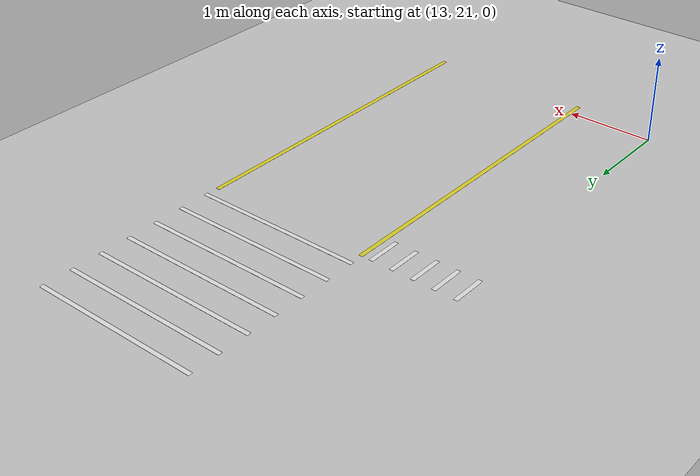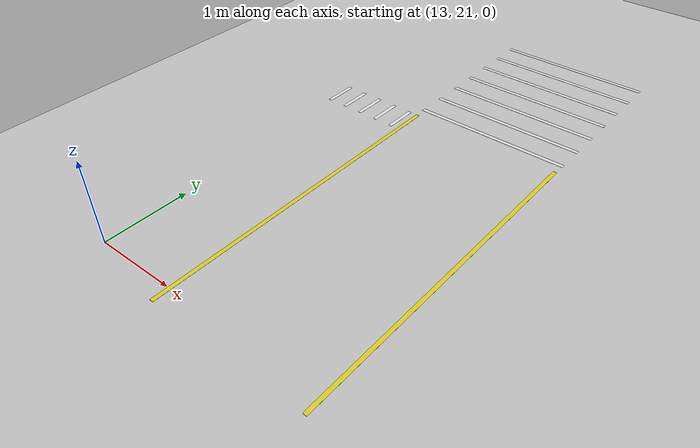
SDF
<sdf version="1.6">
 <world name="default">
  <model name="ground_plane">
   <static>1</static>
   <link name="link">
    <collision name="collision">
     <geometry><plane><normal>0 0 1</normal><size>100 100</size></plane></geometry>
     <surface><friction><ode><mu>100</mu><mu2>50</mu2></ode></friction></surface>
    </collision>
    <visual name="visual">
     <cast_shadows>0</cast_shadows>
     <geometry><plane><normal>0 0 1</normal><size>100 100</size></plane></geometry>
     <material>
      <script><uri>file://media/materials/scripts/gazebo.material</uri><name>Gazebo/Grey</name></script>
     </material>
    </visual>
   </link>
  </model>
  <model name="line4m_4">
   <link name="link_3">
    <inertial>
     <mass>1</mass>
     <inertia>
      <ixx>0.166667</ixx>
      <ixy>0</ixy>
      <ixz>0</ixz>
      <iyy>0.166667</iyy>
      <iyz>0</iyz>
      <izz>0.166667</izz>
     </inertia>
    </inertial>
    <visual name="visual">
     <geometry><box><size>0.05 4 0.001</size></box></geometry>
     <material>
      <lighting>1</lighting>
      <script><uri>file://media/materials/scripts/gazebo.material</uri><name>Gazebo/Yellow</name></script>
     </material>
    </visual>
    <collision name="collision">
     <geometry><box><size>0.05 4 1e-06</size></box></geometry>
     <surface>
      <friction>
       <ode><mu>1</mu><mu2>1</mu2><fdir1>0 0 0</fdir1><slip1>0</slip1><slip2>0</slip2></ode>
       <torsional>
        <coefficient>1</coefficient>
        <patch_radius>0</patch_radius>
        <surface_radius>0</surface_radius>
        <use_patch_radius>1</use_patch_radius>
        <ode><slip>0</slip></ode>
       </torsional>
      </friction>
      <bounce><restitution_coefficient>0</restitution_coefficient><threshold>1e+06</threshold></bounce>
      <contact>
       <collide_without_contact>0</collide_without_contact>
       <collide_without_contact_bitmask>1</collide_without_contact_bitmask>
       <collide_bitmask>1</collide_bitmask>
       <ode>
        <soft_cfm>0</soft_cfm>
        <soft_erp>0.2</soft_erp>
        <kp>1e+13</kp>
        <kd>1</kd>
        <max_vel>0.01</max_vel>
        <min_depth>0</min_depth>
       </ode>
       <bullet>
        <split_impulse>1</split_impulse>
        <split_impulse_penetration_threshold>-0.01</split_impulse_penetration_threshold>
        <soft_cfm>0</soft_cfm>
        <soft_erp>0.2</soft_erp>
        <kp>1e+13</kp>
        <kd>1</kd>
       </bullet>
      </contact>
     </surface>
    </collision>
   </link>
   <static>1</static>
   <pose>15.975 22.8 0 0 -0 0</pose>
  </model>
  <model name="line4m_5">
   <link name="link_3">
    <inertial>
     <mass>1</mass>
     <inertia>
      <ixx>0.166667</ixx>
      <ixy>0</ixy>
      <ixz>0</ixz>
      <iyy>0.166667</iyy>
      <iyz>0</iyz>
      <izz>0.166667</izz>
     </inertia>
    </inertial>
    <visual name="visual">
     <geometry><box><size>0.05 4 0.001</size></box></geometry>
     <material>
      <lighting>1</lighting>
      <script><uri>file://media/materials/scripts/gazebo.material</uri><name>Gazebo/Yellow</name></script>
     </material>
    </visual>
    <collision name="collision">
     <geometry><box><size>0.05 4 1e-06</size></box></geometry>
     <surface>
      <friction>
       <ode><mu>1</mu><mu2>1</mu2><fdir1>0 0 0</fdir1><slip1>0</slip1><slip2>0</slip2></ode>
       <torsional>
        <coefficient>1</coefficient>
        <patch_radius>0</patch_radius>
        <surface_radius>0</surface_radius>
        <use_patch_radius>1</use_patch_radius>
        <ode><slip>0</slip></ode>
       </torsional>
      </friction>
      <bounce><restitution_coefficient>0</restitution_coefficient><threshold>1e+06</threshold></bounce>
      <contact>
       <collide_without_contact>0</collide_without_contact>
       <collide_without_contact_bitmask>1</collide_without_contact_bitmask>
       <collide_bitmask>1</collide_bitmask>
       <ode>
        <soft_cfm>0</soft_cfm>
        <soft_erp>0.2</soft_erp>
        <kp>1e+13</kp>
        <kd>1</kd>
        <max_vel>0.01</max_vel>
        <min_depth>0</min_depth>
       </ode>
       <bullet>
        <split_impulse>1</split_impulse>
        <split_impulse_penetration_threshold>-0.01</split_impulse_penetration_threshold>
        <soft_cfm>0</soft_cfm>
        <soft_erp>0.2</soft_erp>
        <kp>1e+13</kp>
        <kd>1</kd>
       </bullet>
      </contact>
     </surface>
    </collision>
   </link>
   <static>1</static>
   <pose>14.025 22.8 0 0 -0 0</pose>
  </model>
  <model name="zebra_crossing_200cmx210cm_2">
   <link name="link_0">
    <inertial>
     <mass>1</mass>
     <inertia>
      <ixx>0.166667</ixx>
      <ixy>0</ixy>
      <ixz>0</ixz>
      <iyy>0.166667</iyy>
      <iyz>0</iyz>
      <izz>0.166667</izz>
     </inertia>
    </inertial>
    <visual name="ModelPreview_1::link_0::visual_6">
     <pose>-1.05 0 0 0 -0 0</pose>
     <geometry><box><size>0.05 2 0.001</size></box></geometry>
     <material>
      <lighting>1</lighting>
      <script><uri>file://media/materials/scripts/gazebo.material</uri><name>Gazebo/White</name></script>
     </material>
    </visual>
    <visual name="ModelPreview_1::link_0::visual_1">
     <pose>0.35 0 0 0 -0 0</pose>
     <geometry><box><size>0.05 2 0.001</size></box></geometry>
     <material>
      <lighting>1</lighting>
      <script><uri>file://media/materials/scripts/gazebo.material</uri><name>Gazebo/White</name></script>
     </material>
    </visual>
    <visual name="ModelPreview_1::link_0::visual_5">
     <pose>-0.7 0 0 0 -0 0</pose>
     <geometry><box><size>0.05 2 0.001</size></box></geometry>
     <material>
      <lighting>1</lighting>
      <script><uri>file://media/materials/scripts/gazebo.material</uri><name>Gazebo/White</name></script>
     </material>
    </visual>
    <visual name="ModelPreview_1::link_0::visual_3">
     <pose>1.05 0 0 0 -0 0</pose>
     <geometry><box><size>0.05 2 0.001</size></box></geometry>
     <material>
      <lighting>1</lighting>
      <script><uri>file://media/materials/scripts/gazebo.material</uri><name>Gazebo/White</name></script>
     </material>
    </visual>
    <visual name="ModelPreview_1::link_0::visual_2">
     <pose>0.7 0 0 0 -0 0</pose>
     <geometry><box><size>0.05 2 0.001</size></box></geometry>
     <material>
      <lighting>1</lighting>
      <script><uri>file://media/materials/scripts/gazebo.material</uri><name>Gazebo/White</name></script>
     </material>
    </visual>
    <visual name="visual">
     <geometry><box><size>0.05 2 0.001</size></box></geometry>
     <material>
      <lighting>1</lighting>
      <script><uri>file://media/materials/scripts/gazebo.material</uri><name>Gazebo/White</name></script>
     </material>
    </visual>
    <visual name="ModelPreview_1::link_0::visual_4">
     <pose>-0.35 0 0 0 -0 0</pose>
     <geometry><box><size>0.05 2 0.001</size></box></geometry>
     <material>
      <lighting>1</lighting>
      <script><uri>file://media/materials/scripts/gazebo.material</uri><name>Gazebo/White</name></script>
     </material>
    </visual>
    <collision name="collision_2">
     <pose>0.7 0 0 0 -0 0</pose>
     <geometry><box><size>0.05 2 1e-05</size></box></geometry>
     <surface>
      <friction>
       <ode><mu>1</mu><mu2>1</mu2><fdir1>0 0 0</fdir1><slip1>0</slip1><slip2>0</slip2></ode>
       <torsional>
        <coefficient>1</coefficient>
        <patch_radius>0</patch_radius>
        <surface_radius>0</surface_radius>
        <use_patch_radius>1</use_patch_radius>
        <ode><slip>0</slip></ode>
       </torsional>
      </friction>
      <bounce><restitution_coefficient>0</restitution_coefficient><threshold>1e+06</threshold></bounce>
      <contact>
       <collide_without_contact>0</collide_without_contact>
       <collide_without_contact_bitmask>1</collide_without_contact_bitmask>
       <collide_bitmask>1</collide_bitmask>
       <ode>
        <soft_cfm>0</soft_cfm>
        <soft_erp>0.2</soft_erp>
        <kp>1e+13</kp>
        <kd>1</kd>
        <max_vel>0.01</max_vel>
        <min_depth>0</min_depth>
       </ode>
       <bullet>
        <split_impulse>1</split_impulse>
        <split_impulse_penetration_threshold>-0.01</split_impulse_penetration_threshold>
        <soft_cfm>0</soft_cfm>
        <soft_erp>0.2</soft_erp>
        <kp>1e+13</kp>
        <kd>1</kd>
       </bullet>
      </contact>
     </surface>
    </collision>
    <collision name="collision_4">
     <pose>-0.35 0 0 0 -0 0</pose>
     <geometry><box><size>0.05 2 1e-05</size></box></geometry>
     <surface>
      <friction>
       <ode><mu>1</mu><mu2>1</mu2><fdir1>0 0 0</fdir1><slip1>0</slip1><slip2>0</slip2></ode>
       <torsional>
        <coefficient>1</coefficient>
        <patch_radius>0</patch_radius>
        <surface_radius>0</surface_radius>
        <use_patch_radius>1</use_patch_radius>
        <ode><slip>0</slip></ode>
       </torsional>
      </friction>
      <bounce><restitution_coefficient>0</restitution_coefficient><threshold>1e+06</threshold></bounce>
      <contact>
       <collide_without_contact>0</collide_without_contact>
       <collide_without_contact_bitmask>1</collide_without_contact_bitmask>
       <collide_bitmask>1</collide_bitmask>
       <ode>
        <soft_cfm>0</soft_cfm>
        <soft_erp>0.2</soft_erp>
        <kp>1e+13</kp>
        <kd>1</kd>
        <max_vel>0.01</max_vel>
        <min_depth>0</min_depth>
       </ode>
       <bullet>
        <split_impulse>1</split_impulse>
        <split_impulse_penetration_threshold>-0.01</split_impulse_penetration_threshold>
        <soft_cfm>0</soft_cfm>
        <soft_erp>0.2</soft_erp>
        <kp>1e+13</kp>
        <kd>1</kd>
       </bullet>
      </contact>
     </surface>
    </collision>
    <collision name="collision">
     <geometry><box><size>0.05 2 1e-05</size></box></geometry>
     <surface>
      <friction>
       <ode><mu>1</mu><mu2>1</mu2><fdir1>0 0 0</fdir1><slip1>0</slip1><slip2>0</slip2></ode>
       <torsional>
        <coefficient>1</coefficient>
        <patch_radius>0</patch_radius>
        <surface_radius>0</surface_radius>
        <use_patch_radius>1</use_patch_radius>
        <ode><slip>0</slip></ode>
       </torsional>
      </friction>
      <bounce><restitution_coefficient>0</restitution_coefficient><threshold>1e+06</threshold></bounce>
      <contact>
       <collide_without_contact>0</collide_without_contact>
       <collide_without_contact_bitmask>1</collide_without_contact_bitmask>
       <collide_bitmask>1</collide_bitmask>
       <ode>
        <soft_cfm>0</soft_cfm>
        <soft_erp>0.2</soft_erp>
        <kp>1e+13</kp>
        <kd>1</kd>
        <max_vel>0.01</max_vel>
        <min_depth>0</min_depth>
       </ode>
       <bullet>
        <split_impulse>1</split_impulse>
        <split_impulse_penetration_threshold>-0.01</split_impulse_penetration_threshold>
        <soft_cfm>0</soft_cfm>
        <soft_erp>0.2</soft_erp>
        <kp>1e+13</kp>
        <kd>1</kd>
       </bullet>
      </contact>
     </surface>
    </collision>
    <collision name="collision_5">
     <pose>-0.7 0 0 0 -0 0</pose>
     <geometry><box><size>0.05 2 1e-05</size></box></geometry>
     <surface>
      <friction>
       <ode><mu>1</mu><mu2>1</mu2><fdir1>0 0 0</fdir1><slip1>0</slip1><slip2>0</slip2></ode>
       <torsional>
        <coefficient>1</coefficient>
        <patch_radius>0</patch_radius>
        <surface_radius>0</surface_radius>
        <use_patch_radius>1</use_patch_radius>
        <ode><slip>0</slip></ode>
       </torsional>
      </friction>
      <bounce><restitution_coefficient>0</restitution_coefficient><threshold>1e+06</threshold></bounce>
      <contact>
       <collide_without_contact>0</collide_without_contact>
       <collide_without_contact_bitmask>1</collide_without_contact_bitmask>
       <collide_bitmask>1</collide_bitmask>
       <ode>
        <soft_cfm>0</soft_cfm>
        <soft_erp>0.2</soft_erp>
        <kp>1e+13</kp>
        <kd>1</kd>
        <max_vel>0.01</max_vel>
        <min_depth>0</min_depth>
       </ode>
       <bullet>
        <split_impulse>1</split_impulse>
        <split_impulse_penetration_threshold>-0.01</split_impulse_penetration_threshold>
        <soft_cfm>0</soft_cfm>
        <soft_erp>0.2</soft_erp>
        <kp>1e+13</kp>
        <kd>1</kd>
       </bullet>
      </contact>
     </surface>
    </collision>
    <collision name="collision_1">
     <pose>0.35 0 0 0 -0 0</pose>
     <geometry><box><size>0.05 2 1e-05</size></box></geometry>
     <surface>
      <friction>
       <ode><mu>1</mu><mu2>1</mu2><fdir1>0 0 0</fdir1><slip1>0</slip1><slip2>0</slip2></ode>
       <torsional>
        <coefficient>1</coefficient>
        <patch_radius>0</patch_radius>
        <surface_radius>0</surface_radius>
        <use_patch_radius>1</use_patch_radius>
        <ode><slip>0</slip></ode>
       </torsional>
      </friction>
      <bounce><restitution_coefficient>0</restitution_coefficient><threshold>1e+06</threshold></bounce>
      <contact>
       <collide_without_contact>0</collide_without_contact>
       <collide_without_contact_bitmask>1</collide_without_contact_bitmask>
       <collide_bitmask>1</collide_bitmask>
       <ode>
        <soft_cfm>0</soft_cfm>
        <soft_erp>0.2</soft_erp>
        <kp>1e+13</kp>
        <kd>1</kd>
        <max_vel>0.01</max_vel>
        <min_depth>0</min_depth>
       </ode>
       <bullet>
        <split_impulse>1</split_impulse>
        <split_impulse_penetration_threshold>-0.01</split_impulse_penetration_threshold>
        <soft_cfm>0</soft_cfm>
        <soft_erp>0.2</soft_erp>
        <kp>1e+13</kp>
        <kd>1</kd>
       </bullet>
      </contact>
     </surface>
    </collision>
    <collision name="collision_3">
     <pose>1.05 0 0 0 -0 0</pose>
     <geometry><box><size>0.05 2 1e-05</size></box></geometry>
     <surface>
      <friction>
       <ode><mu>1</mu><mu2>1</mu2><fdir1>0 0 0</fdir1><slip1>0</slip1><slip2>0</slip2></ode>
       <torsional>
        <coefficient>1</coefficient>
        <patch_radius>0</patch_radius>
        <surface_radius>0</surface_radius>
        <use_patch_radius>1</use_patch_radius>
        <ode><slip>0</slip></ode>
       </torsional>
      </friction>
      <bounce><restitution_coefficient>0</restitution_coefficient><threshold>1e+06</threshold></bounce>
      <contact>
       <collide_without_contact>0</collide_without_contact>
       <collide_without_contact_bitmask>1</collide_without_contact_bitmask>
       <collide_bitmask>1</collide_bitmask>
       <ode>
        <soft_cfm>0</soft_cfm>
        <soft_erp>0.2</soft_erp>
        <kp>1e+13</kp>
        <kd>1</kd>
        <max_vel>0.01</max_vel>
        <min_depth>0</min_depth>
       </ode>
       <bullet>
        <split_impulse>1</split_impulse>
        <split_impulse_penetration_threshold>-0.01</split_impulse_penetration_threshold>
        <soft_cfm>0</soft_cfm>
        <soft_erp>0.2</soft_erp>
        <kp>1e+13</kp>
        <kd>1</kd>
       </bullet>
      </contact>
     </surface>
    </collision>
    <collision name="collision_6">
     <pose>-1.05 0 0 0 -0 0</pose>
     <geometry><box><size>0.05 2 1e-05</size></box></geometry>
     <surface>
      <friction>
       <ode><mu>1</mu><mu2>1</mu2><fdir1>0 0 0</fdir1><slip1>0</slip1><slip2>0</slip2></ode>
       <torsional>
        <coefficient>1</coefficient>
        <patch_radius>0</patch_radius>
        <surface_radius>0</surface_radius>
        <use_patch_radius>1</use_patch_radius>
        <ode><slip>0</slip></ode>
       </torsional>
      </friction>
      <bounce><restitution_coefficient>0</restitution_coefficient><threshold>1e+06</threshold></bounce>
      <contact>
       <collide_without_contact>0</collide_without_contact>
       <collide_without_contact_bitmask>1</collide_without_contact_bitmask>
       <collide_bitmask>1</collide_bitmask>
       <ode>
        <soft_cfm>0</soft_cfm>
        <soft_erp>0.2</soft_erp>
        <kp>1e+13</kp>
        <kd>1</kd>
        <max_vel>0.01</max_vel>
        <min_depth>0</min_depth>
       </ode>
       <bullet>
        <split_impulse>1</split_impulse>
        <split_impulse_penetration_threshold>-0.01</split_impulse_penetration_threshold>
        <soft_cfm>0</soft_cfm>
        <soft_erp>0.2</soft_erp>
        <kp>1e+13</kp>
        <kd>1</kd>
       </bullet>
      </contact>
     </surface>
    </collision>
   </link>
   <static>1</static>
   <pose>15 26 0 0 -0 1.5708</pose>
  </model>
  <model name="zebro_crossing_40cmx120cm_1">
   <link name="link_1">
    <inertial>
     <mass>1</mass>
     <inertia>
      <ixx>0.166667</ixx>
      <ixy>0</ixy>
      <ixz>0</ixz>
      <iyy>0.166667</iyy>
      <iyz>0</iyz>
      <izz>0.166667</izz>
     </inertia>
    </inertial>
    <visual name="ModelPreview_3::link_1::visual_4">
     <pose>-0.5 0 0 0 -0 0</pose>
     <geometry><box><size>0.05 0.4 0.001</size></box></geometry>
     <material>
      <lighting>1</lighting>
      <script><uri>file://media/materials/scripts/gazebo.material</uri><name>Gazebo/White</name></script>
     </material>
    </visual>
    <visual name="ModelPreview_3::link_1::visual_1">
     <pose>0.25 0 0 0 -0 0</pose>
     <geometry><box><size>0.05 0.4 0.001</size></box></geometry>
     <material>
      <lighting>1</lighting>
      <script><uri>file://media/materials/scripts/gazebo.material</uri><name>Gazebo/White</name></script>
     </material>
    </visual>
    <visual name="ModelPreview_3::link_1::visual_2">
     <pose>0.5 0 0 0 -0 0</pose>
     <geometry><box><size>0.05 0.4 0.001</size></box></geometry>
     <material>
      <lighting>1</lighting>
      <script><uri>file://media/materials/scripts/gazebo.material</uri><name>Gazebo/White</name></script>
     </material>
    </visual>
    <visual name="visual">
     <geometry><box><size>0.05 0.4 0.001</size></box></geometry>
     <material>
      <lighting>1</lighting>
      <script><uri>file://media/materials/scripts/gazebo.material</uri><name>Gazebo/White</name></script>
     </material>
    </visual>
    <visual name="ModelPreview_3::link_1::visual_3">
     <pose>-0.25 0 0 0 -0 0</pose>
     <geometry><box><size>0.05 0.4 0.001</size></box></geometry>
     <material>
      <lighting>1</lighting>
      <script><uri>file://media/materials/scripts/gazebo.material</uri><name>Gazebo/White</name></script>
     </material>
    </visual>
    <collision name="collision_1">
     <pose>0.25 0 0 0 -0 0</pose>
     <geometry><box><size>0.05 0.4 1e-06</size></box></geometry>
     <surface>
      <friction>
       <ode><mu>1</mu><mu2>1</mu2><fdir1>0 0 0</fdir1><slip1>0</slip1><slip2>0</slip2></ode>
       <torsional>
        <coefficient>1</coefficient>
        <patch_radius>0</patch_radius>
        <surface_radius>0</surface_radius>
        <use_patch_radius>1</use_patch_radius>
        <ode><slip>0</slip></ode>
       </torsional>
      </friction>
      <bounce><restitution_coefficient>0</restitution_coefficient><threshold>1e+06</threshold></bounce>
      <contact>
       <collide_without_contact>0</collide_without_contact>
       <collide_without_contact_bitmask>1</collide_without_contact_bitmask>
       <collide_bitmask>1</collide_bitmask>
       <ode>
        <soft_cfm>0</soft_cfm>
        <soft_erp>0.2</soft_erp>
        <kp>1e+13</kp>
        <kd>1</kd>
        <max_vel>0.01</max_vel>
        <min_depth>0</min_depth>
       </ode>
       <bullet>
        <split_impulse>1</split_impulse>
        <split_impulse_penetration_threshold>-0.01</split_impulse_penetration_threshold>
        <soft_cfm>0</soft_cfm>
        <soft_erp>0.2</soft_erp>
        <kp>1e+13</kp>
        <kd>1</kd>
       </bullet>
      </contact>
     </surface>
    </collision>
    <collision name="collision_2">
     <pose>0.5 0 0 0 -0 0</pose>
     <geometry><box><size>0.05 0.4 1e-06</size></box></geometry>
     <surface>
      <friction>
       <ode><mu>1</mu><mu2>1</mu2><fdir1>0 0 0</fdir1><slip1>0</slip1><slip2>0</slip2></ode>
       <torsional>
        <coefficient>1</coefficient>
        <patch_radius>0</patch_radius>
        <surface_radius>0</surface_radius>
        <use_patch_radius>1</use_patch_radius>
        <ode><slip>0</slip></ode>
       </torsional>
      </friction>
      <bounce><restitution_coefficient>0</restitution_coefficient><threshold>1e+06</threshold></bounce>
      <contact>
       <collide_without_contact>0</collide_without_contact>
       <collide_without_contact_bitmask>1</collide_without_contact_bitmask>
       <collide_bitmask>1</collide_bitmask>
       <ode>
        <soft_cfm>0</soft_cfm>
        <soft_erp>0.2</soft_erp>
        <kp>1e+13</kp>
        <kd>1</kd>
        <max_vel>0.01</max_vel>
        <min_depth>0</min_depth>
       </ode>
       <bullet>
        <split_impulse>1</split_impulse>
        <split_impulse_penetration_threshold>-0.01</split_impulse_penetration_threshold>
        <soft_cfm>0</soft_cfm>
        <soft_erp>0.2</soft_erp>
        <kp>1e+13</kp>
        <kd>1</kd>
       </bullet>
      </contact>
     </surface>
    </collision>
    <collision name="collision_3">
     <pose>-0.25 0 0 0 -0 0</pose>
     <geometry><box><size>0.05 0.4 1e-06</size></box></geometry>
     <surface>
      <friction>
       <ode><mu>1</mu><mu2>1</mu2><fdir1>0 0 0</fdir1><slip1>0</slip1><slip2>0</slip2></ode>
       <torsional>
        <coefficient>1</coefficient>
        <patch_radius>0</patch_radius>
        <surface_radius>0</surface_radius>
        <use_patch_radius>1</use_patch_radius>
        <ode><slip>0</slip></ode>
       </torsional>
      </friction>
      <bounce><restitution_coefficient>0</restitution_coefficient><threshold>1e+06</threshold></bounce>
      <contact>
       <collide_without_contact>0</collide_without_contact>
       <collide_without_contact_bitmask>1</collide_without_contact_bitmask>
       <collide_bitmask>1</collide_bitmask>
       <ode>
        <soft_cfm>0</soft_cfm>
        <soft_erp>0.2</soft_erp>
        <kp>1e+13</kp>
        <kd>1</kd>
        <max_vel>0.01</max_vel>
        <min_depth>0</min_depth>
       </ode>
       <bullet>
        <split_impulse>1</split_impulse>
        <split_impulse_penetration_threshold>-0.01</split_impulse_penetration_threshold>
        <soft_cfm>0</soft_cfm>
        <soft_erp>0.2</soft_erp>
        <kp>1e+13</kp>
        <kd>1</kd>
       </bullet>
      </contact>
     </surface>
    </collision>
    <collision name="collision">
     <geometry><box><size>0.05 0.4 1e-06</size></box></geometry>
     <surface>
      <friction>
       <ode><mu>1</mu><mu2>1</mu2><fdir1>0 0 0</fdir1><slip1>0</slip1><slip2>0</slip2></ode>
       <torsional>
        <coefficient>1</coefficient>
        <patch_radius>0</patch_radius>
        <surface_radius>0</surface_radius>
        <use_patch_radius>1</use_patch_radius>
        <ode><slip>0</slip></ode>
       </torsional>
      </friction>
      <bounce><restitution_coefficient>0</restitution_coefficient><threshold>1e+06</threshold></bounce>
      <contact>
       <collide_without_contact>0</collide_without_contact>
       <collide_without_contact_bitmask>1</collide_without_contact_bitmask>
       <collide_bitmask>1</collide_bitmask>
       <ode>
        <soft_cfm>0</soft_cfm>
        <soft_erp>0.2</soft_erp>
        <kp>1e+13</kp>
        <kd>1</kd>
        <max_vel>0.01</max_vel>
        <min_depth>0</min_depth>
       </ode>
       <bullet>
        <split_impulse>1</split_impulse>
        <split_impulse_penetration_threshold>-0.01</split_impulse_penetration_threshold>
        <soft_cfm>0</soft_cfm>
        <soft_erp>0.2</soft_erp>
        <kp>1e+13</kp>
        <kd>1</kd>
       </bullet>
      </contact>
     </surface>
    </collision>
    <collision name="collision_4">
     <pose>-0.5 0 0 0 -0 0</pose>
     <geometry><box><size>0.05 0.4 1e-06</size></box></geometry>
     <surface>
      <friction>
       <ode><mu>1</mu><mu2>1</mu2><fdir1>0 0 0</fdir1><slip1>0</slip1><slip2>0</slip2></ode>
       <torsional>
        <coefficient>1</coefficient>
        <patch_radius>0</patch_radius>
        <surface_radius>0</surface_radius>
        <use_patch_radius>1</use_patch_radius>
        <ode><slip>0</slip></ode>
       </torsional>
      </friction>
      <bounce><restitution_coefficient>0</restitution_coefficient><threshold>1e+06</threshold></bounce>
      <contact>
       <collide_without_contact>0</collide_without_contact>
       <collide_without_contact_bitmask>1</collide_without_contact_bitmask>
       <collide_bitmask>1</collide_bitmask>
       <ode>
        <soft_cfm>0</soft_cfm>
        <soft_erp>0.2</soft_erp>
        <kp>1e+13</kp>
        <kd>1</kd>
        <max_vel>0.01</max_vel>
        <min_depth>0</min_depth>
       </ode>
       <bullet>
        <split_impulse>1</split_impulse>
        <split_impulse_penetration_threshold>-0.01</split_impulse_penetration_threshold>
        <soft_cfm>0</soft_cfm>
        <soft_erp>0.2</soft_erp>
        <kp>1e+13</kp>
        <kd>1</kd>
       </bullet>
      </contact>
     </surface>
    </collision>
   </link>
   <static>1</static>
   <pose>13.4 24.6 0 0 -0 0</pose>
  </model>
 </world>
</sdf>
